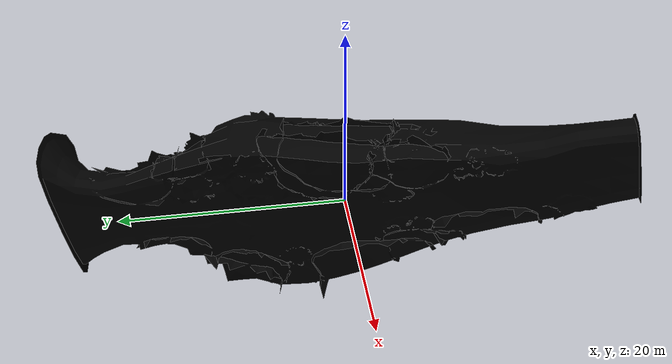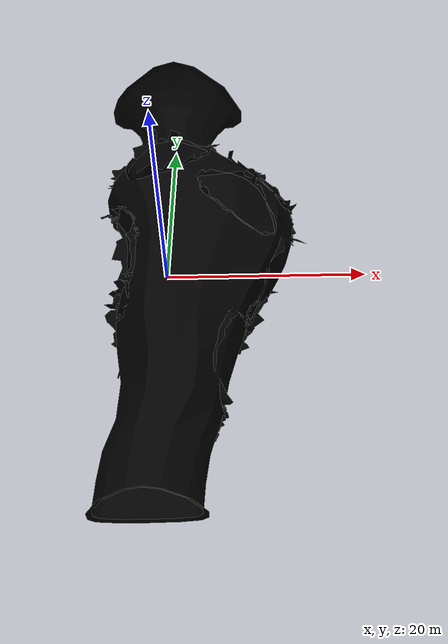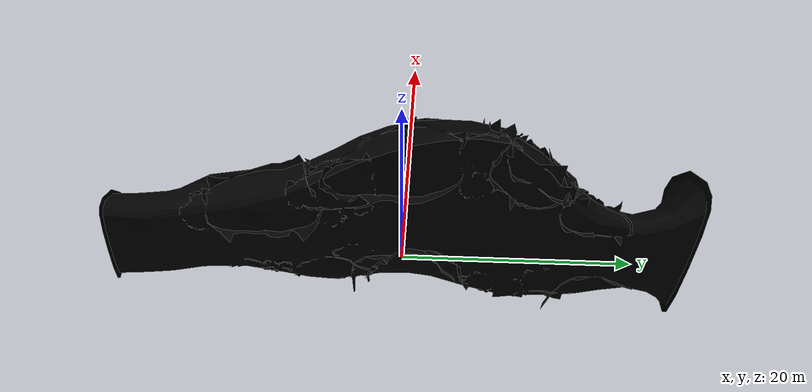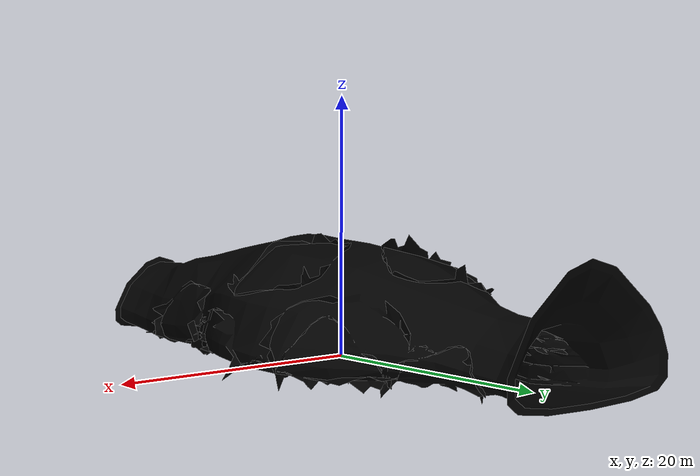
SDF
<sdf version="1.6">
  <model name="Cave Transition Type A to and from Type B Lights">
    <include>
      <name>cave_transition_type_a_to_and_from_type_b</name>
      <uri>model://Cave Transition Type A to and from Type B</uri>
    </include>
    <static>true</static>
    <link name="lights">
      <light name="Omni023" type="spot">
        <pose>3.41296 1.14569 5.11374 0 0 0</pose>
        <diffuse>0 0 0 1</diffuse>
        <specular>0 0 0 1</specular>
        <attenuation>
          <range>20</range>
          <linear>0.2</linear>
          <constant>1.0</constant>
          <quadratic>0.01</quadratic>
        </attenuation>
        <spot>
          <inner_angle>2.0</inner_angle>
          <outer_angle>3.1</outer_angle>
          <falloff>1.2</falloff>
        </spot>
        <cast_shadows>false</cast_shadows>
      </light>
    </link>
  </model>
</sdf>

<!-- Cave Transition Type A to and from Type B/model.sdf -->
<sdf version="1.6">
  <model name="Cave Transition Type A to and from Type B">
    <static>true</static>
    <link name="base_link">
      <collision name="collision">
        <pose>0 0 0 0 0 0</pose>
        <geometry>
          <mesh>
            <uri>model://Cave Transition Type A to and from Type B/meshes/cavetransition.dae</uri>
            <scale>1.0 1.0 1.0</scale>
          </mesh>
        </geometry>
      </collision>
      <visual name="Gravel_visual">
        <geometry>
          <mesh>
            <uri>model://Cave Transition Type A to and from Type B/meshes/cavetransition.dae</uri>
            <submesh>
              <name>Gravel</name>
              <center>false</center>
            </submesh>
          </mesh>
        </geometry>
        <material>
          <diffuse>0 0 0 1</diffuse>
          <specular>0 0 0 1</specular>
          <pbr>
            <metal>
              <albedo_map>model://Cave Transition Type A to and from Type B/materials/textures/Gravel_Albedo.png</albedo_map>
              <normal_map>model://Cave Transition Type A to and from Type B/materials/textures/Gravel_Normal.png</normal_map>
              <roughness_map>model://Cave Transition Type A to and from Type B/materials/textures/Gravel_Roughness.png</roughness_map>
            </metal>
          </pbr>

          <script>
            <uri>model://Cave Transition Type A to and from Type B/materials/scripts/</uri>
            <uri>model://Cave Transition Type A to and from Type B/materials/textures/</uri>
            <name>CaveTile/Gravel_Diffuse</name>
          </script>
        </material>
      </visual>
      <visual name="RockPile_visual">
        <geometry>
          <mesh>
            <uri>model://Cave Transition Type A to and from Type B/meshes/cavetransition.dae</uri>
            <submesh>
              <name>RockPile</name>
              <center>false</center>
            </submesh>
          </mesh>
        </geometry>
        <material>
          <diffuse>0 0 0 1</diffuse>
          <specular>0 0 0 1</specular>
          <pbr>
            <metal>
              <albedo_map>model://Cave Transition Type A to and from Type B/materials/textures/RockPile_Albedo.png</albedo_map>
              <normal_map>model://Cave Transition Type A to and from Type B/materials/textures/RockPile_Normal.png</normal_map>
              <roughness_map>model://Cave Transition Type A to and from Type B/materials/textures/RockPile_Roughness.png</roughness_map>
            </metal>
          </pbr>

          <script>
            <uri>model://Cave Transition Type A to and from Type B/materials/scripts/</uri>
            <uri>model://Cave Transition Type A to and from Type B/materials/textures/</uri>
            <name>CaveTile/RockPile_Diffuse</name>
          </script>
        </material>
      </visual>
      <visual name="StriatedRock_visual">
        <geometry>
          <mesh>
            <uri>model://Cave Transition Type A to and from Type B/meshes/cavetransition.dae</uri>
            <submesh>
              <name>StriatedRock</name>
              <center>false</center>
            </submesh>
          </mesh>
        </geometry>
        <material>
          <diffuse>0 0 0 1</diffuse>
          <specular>0 0 0 1</specular>
          <pbr>
            <metal>
              <albedo_map>model://Cave Transition Type A to and from Type B/materials/textures/StriatedRock_Albedo.png</albedo_map>
              <normal_map>model://Cave Transition Type A to and from Type B/materials/textures/StriatedRock_Normal.png</normal_map>
              <roughness_map>model://Cave Transition Type A to and from Type B/materials/textures/StriatedRock_Roughness.png</roughness_map>
            </metal>
          </pbr>

          <script>
            <uri>model://Cave Transition Type A to and from Type B/materials/scripts/</uri>
            <uri>model://Cave Transition Type A to and from Type B/materials/textures/</uri>
            <name>CaveTile/StriatedRock_Diffuse</name>
          </script>
        </material>
      </visual>
      <visual name="CaveWall_visual">
        <geometry>
          <mesh>
            <uri>model://Cave Transition Type A to and from Type B/meshes/cavetransition.dae</uri>
            <submesh>
              <name>CaveWall</name>
              <center>false</center>
            </submesh>
          </mesh>
        </geometry>
        <material>
          <diffuse>0 0 0 1</diffuse>
          <specular>0 0 0 1</specular>
          <pbr>
            <metal>
              <albedo_map>model://Cave Transition Type A to and from Type B/materials/textures/CaveWall_Albedo.png</albedo_map>
              <normal_map>model://Cave Transition Type A to and from Type B/materials/textures/CaveWall_Normal.png</normal_map>
              <roughness_map>model://Cave Transition Type A to and from Type B/materials/textures/CaveWall_Roughness.png</roughness_map>
            </metal>
          </pbr>

          <script>
            <uri>model://Cave Transition Type A to and from Type B/materials/scripts/</uri>
            <uri>model://Cave Transition Type A to and from Type B/materials/textures/</uri>
            <name>CaveTile/CaveWall_Diffuse</name>
          </script>
        </material>
      </visual>
    </link>
  </model>
</sdf>
